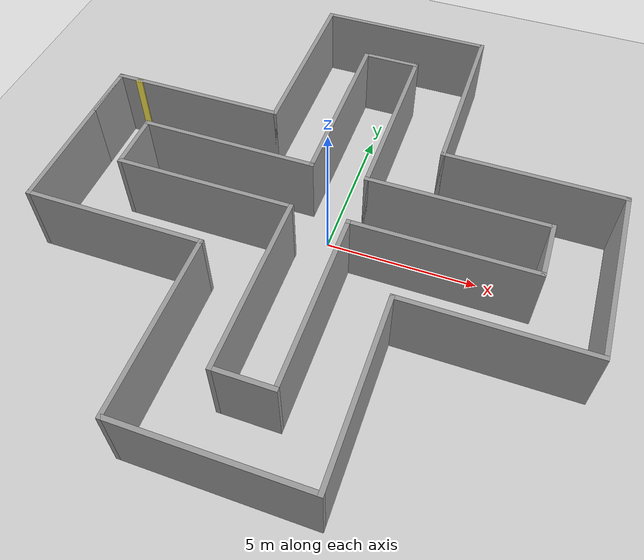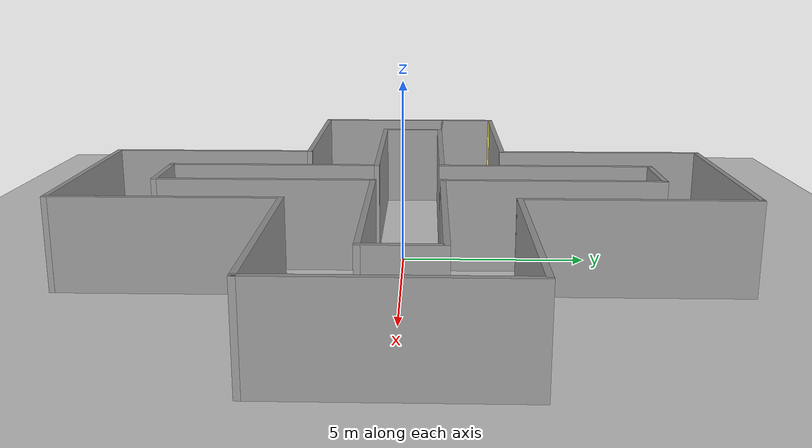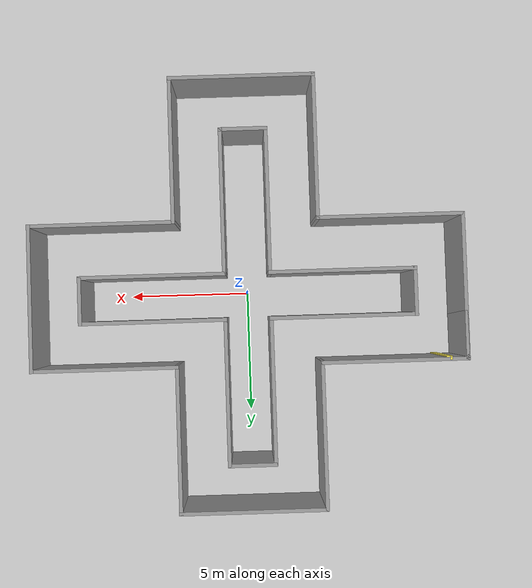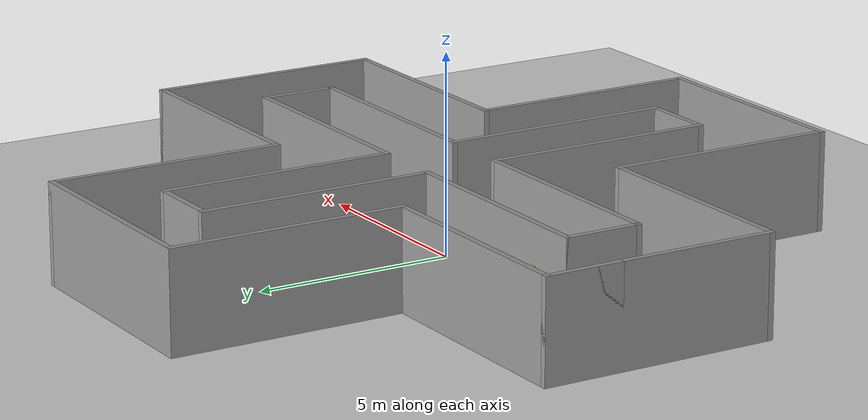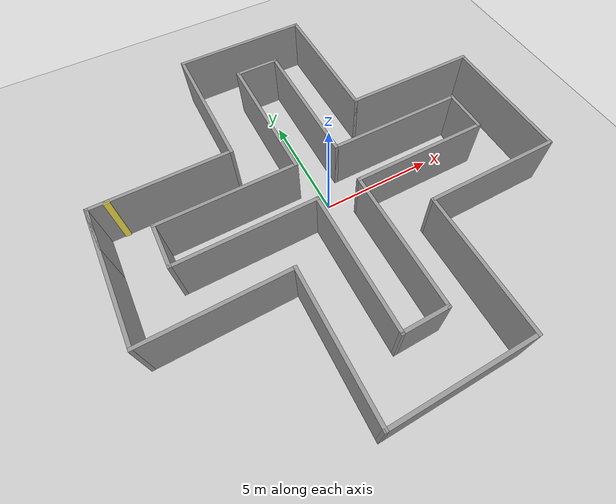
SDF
<sdf version="1.7">
 <world name="default">
  <light name="sun" type="directional">
   <pose>0 0 10 0 -0 0</pose>
   <diffuse>0.8 0.8 0.8 1</diffuse>
   <specular>0.2 0.2 0.2 1</specular>
   <attenuation>
    <range>1000</range>
    <constant>0.9</constant>
    <linear>0.01</linear>
    <quadratic>0.001</quadratic>
   </attenuation>
   <direction>-0.5 0.1 -0.9</direction>
   <spot><inner_angle>0</inner_angle><outer_angle>0</outer_angle><falloff>0</falloff></spot>
  </light>
  <model name="ground_plane">
   <static>1</static>
   <link name="link">
    <collision name="collision">
     <geometry><plane><normal>0 0 1</normal><size>100 100</size></plane></geometry>
     <surface><friction><ode><mu>100</mu><mu2>50</mu2></ode></friction></surface>
    </collision>
    <visual name="visual">
     <cast_shadows>0</cast_shadows>
     <geometry><plane><normal>0 0 1</normal><size>100 100</size></plane></geometry>
     <material>
      <script><uri>file://media/materials/scripts/gazebo.material</uri><name>Gazebo/Grey</name></script>
     </material>
    </visual>
   </link>
  </model>
  <gravity>0 0 -9.8</gravity>
  <magnetic_field>6e-06 2.3e-05 -4.2e-05</magnetic_field>
  <atmosphere type="adiabatic"/>
  <physics type="ode">
   <max_step_size>0.001</max_step_size>
   <real_time_factor>1</real_time_factor>
   <real_time_update_rate>1000</real_time_update_rate>
  </physics>
  <scene><ambient>0.4 0.4 0.4 1</ambient><background>0.7 0.7 0.7 1</background><shadows>1</shadows></scene>
  <spherical_coordinates>
   <surface_model>EARTH_WGS84</surface_model>
   <latitude_deg>0</latitude_deg>
   <longitude_deg>0</longitude_deg>
   <elevation>0</elevation>
   <heading_deg>0</heading_deg>
  </spherical_coordinates>
  <model name="labirent">
   <link name="Wall_14">
    <collision name="Wall_14_Collision">
     <geometry><box><size>6 0.15 2.5</size></box></geometry>
     <pose>0 0 1.25 0 -0 0</pose>
    </collision>
    <visual name="Wall_14_Visual">
     <pose>0 0 1.25 0 -0 0</pose>
     <geometry><box><size>6 0.15 2.5</size></box></geometry>
     <material>
      <script><uri>file://media/materials/scripts/gazebo.material</uri><name>Gazebo/Grey</name></script>
      <ambient>1 1 1 1</ambient>
     </material>
     <meta><layer>0</layer></meta>
    </visual>
    <pose>-5.85 2.925 0 0 -0 0</pose>
   </link>
   <link name="Wall_17">
    <collision name="Wall_17_Collision">
     <geometry><box><size>6 0.15 2.5</size></box></geometry>
     <pose>0 0 1.25 0 -0 0</pose>
    </collision>
    <visual name="Wall_17_Visual">
     <pose>0 0 1.25 0 -0 0</pose>
     <geometry><box><size>6 0.15 2.5</size></box></geometry>
     <material>
      <script><uri>file://media/materials/scripts/gazebo.material</uri><name>Gazebo/Grey</name></script>
      <ambient>1 1 1 1</ambient>
     </material>
     <meta><layer>0</layer></meta>
    </visual>
    <pose>-2.925 5.85 0 0 -0 1.5708</pose>
   </link>
   <link name="Wall_18">
    <collision name="Wall_18_Collision">
     <geometry><box><size>6 0.15 2.5</size></box></geometry>
     <pose>0 0 1.25 0 -0 0</pose>
    </collision>
    <visual name="Wall_18_Visual">
     <pose>0 0 1.25 0 -0 0</pose>
     <geometry><box><size>6 0.15 2.5</size></box></geometry>
     <material>
      <script><uri>file://media/materials/scripts/gazebo.material</uri><name>Gazebo/Grey</name></script>
      <ambient>1 1 1 1</ambient>
     </material>
     <meta><layer>0</layer></meta>
    </visual>
    <pose>0 8.775 0 0 -0 0</pose>
   </link>
   <link name="Wall_19">
    <collision name="Wall_19_Collision">
     <geometry><box><size>6 0.15 2.5</size></box></geometry>
     <pose>0 0 1.25 0 -0 0</pose>
    </collision>
    <visual name="Wall_19_Visual">
     <pose>0 0 1.25 0 -0 0</pose>
     <geometry><box><size>6 0.15 2.5</size></box></geometry>
     <material>
      <script><uri>file://media/materials/scripts/gazebo.material</uri><name>Gazebo/Grey</name></script>
      <ambient>1 1 1 1</ambient>
     </material>
     <meta><layer>0</layer></meta>
    </visual>
    <pose>2.925 5.85 0 0 -0 -1.5708</pose>
   </link>
   <link name="Wall_20">
    <collision name="Wall_20_Collision">
     <geometry><box><size>6 0.15 2.5</size></box></geometry>
     <pose>0 0 1.25 0 -0 0</pose>
    </collision>
    <visual name="Wall_20_Visual">
     <pose>0 0 1.25 0 -0 0</pose>
     <geometry><box><size>6 0.15 2.5</size></box></geometry>
     <material>
      <script><uri>file://media/materials/scripts/gazebo.material</uri><name>Gazebo/Grey</name></script>
      <ambient>1 1 1 1</ambient>
     </material>
     <meta><layer>0</layer></meta>
    </visual>
    <pose>5.85 2.925 0 0 -0 0</pose>
   </link>
   <link name="Wall_22">
    <collision name="Wall_22_Collision">
     <geometry><box><size>6 0.15 2.5</size></box></geometry>
     <pose>0 0 1.25 0 -0 0</pose>
    </collision>
    <visual name="Wall_22_Visual">
     <pose>0 0 1.25 0 -0 0</pose>
     <geometry><box><size>6 0.15 2.5</size></box></geometry>
     <material>
      <script><uri>file://media/materials/scripts/gazebo.material</uri><name>Gazebo/Grey</name></script>
      <ambient>1 1 1 1</ambient>
     </material>
     <meta><layer>0</layer></meta>
    </visual>
    <pose>8.775 -0 0 0 -0 -1.5708</pose>
   </link>
   <link name="Wall_23">
    <collision name="Wall_23_Collision">
     <geometry><box><size>6 0.15 2.5</size></box></geometry>
     <pose>0 0 1.25 0 -0 0</pose>
    </collision>
    <visual name="Wall_23_Visual">
     <pose>0 0 1.25 0 -0 0</pose>
     <geometry><box><size>6 0.15 2.5</size></box></geometry>
     <material>
      <script><uri>file://media/materials/scripts/gazebo.material</uri><name>Gazebo/Grey</name></script>
      <ambient>1 1 1 1</ambient>
     </material>
     <meta><layer>0</layer></meta>
    </visual>
    <pose>5.85 -2.925 0 0 -0 3.14159</pose>
   </link>
   <link name="Wall_25">
    <collision name="Wall_25_Collision">
     <geometry><box><size>6 0.15 2.5</size></box></geometry>
     <pose>0 0 1.25 0 -0 0</pose>
    </collision>
    <visual name="Wall_25_Visual">
     <pose>0 0 1.25 0 -0 0</pose>
     <geometry><box><size>6 0.15 2.5</size></box></geometry>
     <material>
      <script><uri>file://media/materials/scripts/gazebo.material</uri><name>Gazebo/Grey</name></script>
      <ambient>1 1 1 1</ambient>
     </material>
     <meta><layer>0</layer></meta>
    </visual>
    <pose>2.925 -5.85 0 0 -0 -1.5708</pose>
   </link>
   <link name="Wall_26">
    <collision name="Wall_26_Collision">
     <geometry><box><size>6 0.15 2.5</size></box></geometry>
     <pose>0 0 1.25 0 -0 0</pose>
    </collision>
    <visual name="Wall_26_Visual">
     <pose>0 0 1.25 0 -0 0</pose>
     <geometry><box><size>6 0.15 2.5</size></box></geometry>
     <material>
      <script><uri>file://media/materials/scripts/gazebo.material</uri><name>Gazebo/Grey</name></script>
      <ambient>1 1 1 1</ambient>
     </material>
     <meta><layer>0</layer></meta>
    </visual>
    <pose>0 -8.775 0 0 -0 3.14159</pose>
   </link>
   <link name="Wall_27">
    <collision name="Wall_27_Collision">
     <geometry><box><size>6 0.15 2.5</size></box></geometry>
     <pose>0 0 1.25 0 -0 0</pose>
    </collision>
    <visual name="Wall_27_Visual">
     <pose>0 0 1.25 0 -0 0</pose>
     <geometry><box><size>6 0.15 2.5</size></box></geometry>
     <material>
      <script><uri>file://media/materials/scripts/gazebo.material</uri><name>Gazebo/Grey</name></script>
      <ambient>1 1 1 1</ambient>
     </material>
     <meta><layer>0</layer></meta>
    </visual>
    <pose>-2.925 -5.85 0 0 -0 1.5708</pose>
   </link>
   <link name="Wall_28">
    <collision name="Wall_28_Collision">
     <geometry><box><size>6 0.15 2.5</size></box></geometry>
     <pose>0 0 1.25 0 -0 0</pose>
    </collision>
    <visual name="Wall_28_Visual">
     <pose>0 0 1.25 0 -0 0</pose>
     <geometry><box><size>6 0.15 2.5</size></box></geometry>
     <material>
      <script><uri>file://media/materials/scripts/gazebo.material</uri><name>Gazebo/Grey</name></script>
      <ambient>1 1 1 1</ambient>
     </material>
     <meta><layer>0</layer></meta>
    </visual>
    <pose>-5.85 -2.925 0 0 -0 3.14159</pose>
   </link>
   <link name="Wall_30">
    <collision name="Wall_30_Collision">
     <geometry><box><size>6 0.15 2.5</size></box></geometry>
     <pose>0 0 1.25 0 -0 0</pose>
    </collision>
    <visual name="Wall_30_Visual">
     <pose>0 0 1.25 0 -0 0</pose>
     <geometry><box><size>6 0.15 2.5</size></box></geometry>
     <material>
      <script><uri>file://media/materials/scripts/gazebo.material</uri><name>Gazebo/Grey</name></script>
      <ambient>1 1 1 1</ambient>
     </material>
     <meta><layer>0</layer></meta>
    </visual>
    <pose>-8.775 -0 0 0 -0 1.5708</pose>
   </link>
   <link name="Wall_33">
    <collision name="Wall_33_Collision">
     <geometry><box><size>2 0.15 2.5</size></box></geometry>
     <pose>0 0 1.25 0 -0 0</pose>
    </collision>
    <visual name="Wall_33_Visual">
     <pose>0 0 1.25 0 -0 0</pose>
     <geometry><box><size>2 0.15 2.5</size></box></geometry>
     <material>
      <script><uri>file://media/materials/scripts/gazebo.material</uri><name>Gazebo/Grey</name></script>
      <ambient>1 1 1 1</ambient>
     </material>
     <meta><layer>0</layer></meta>
    </visual>
    <pose>-8.775 2 0 0 -0 -1.5708</pose>
   </link>
   <link name="Wall_36">
    <collision name="Wall_36_Collision">
     <geometry><box><size>6 0.15 2.5</size></box></geometry>
     <pose>0 0 1.25 0 -0 0</pose>
    </collision>
    <visual name="Wall_36_Visual">
     <pose>0 0 1.25 0 -0 0</pose>
     <geometry><box><size>6 0.15 2.5</size></box></geometry>
     <material>
      <script><uri>file://media/materials/scripts/gazebo.material</uri><name>Gazebo/Grey</name></script>
      <ambient>1 1 1 1</ambient>
     </material>
     <meta><layer>0</layer></meta>
    </visual>
    <pose>-3.85 1.075 0 0 -0 3.14159</pose>
   </link>
   <link name="Wall_40">
    <collision name="Wall_40_Collision">
     <geometry><box><size>6 0.15 2.5</size></box></geometry>
     <pose>0 0 1.25 0 -0 0</pose>
    </collision>
    <visual name="Wall_40_Visual">
     <pose>0 0 1.25 0 -0 0</pose>
     <geometry><box><size>6 0.15 2.5</size></box></geometry>
     <material>
      <script><uri>file://media/materials/scripts/gazebo.material</uri><name>Gazebo/Grey</name></script>
      <ambient>1 1 1 1</ambient>
     </material>
     <meta><layer>0</layer></meta>
    </visual>
    <pose>-0.925 4 0 0 -0 1.5708</pose>
   </link>
   <link name="Wall_41">
    <collision name="Wall_41_Collision">
     <geometry><box><size>2 0.15 2.5</size></box></geometry>
     <pose>0 0 1.25 0 -0 0</pose>
    </collision>
    <visual name="Wall_41_Visual">
     <pose>0 0 1.25 0 -0 0</pose>
     <geometry><box><size>2 0.15 2.5</size></box></geometry>
     <material>
      <script><uri>file://media/materials/scripts/gazebo.material</uri><name>Gazebo/Grey</name></script>
      <ambient>1 1 1 1</ambient>
     </material>
     <meta><layer>0</layer></meta>
    </visual>
    <pose>0 6.925 0 0 -0 0</pose>
   </link>
   <link name="Wall_42">
    <collision name="Wall_42_Collision">
     <geometry><box><size>6 0.15 2.5</size></box></geometry>
     <pose>0 0 1.25 0 -0 0</pose>
    </collision>
    <visual name="Wall_42_Visual">
     <pose>0 0 1.25 0 -0 0</pose>
     <geometry><box><size>6 0.15 2.5</size></box></geometry>
     <material>
      <script><uri>file://media/materials/scripts/gazebo.material</uri><name>Gazebo/Grey</name></script>
      <ambient>1 1 1 1</ambient>
     </material>
     <meta><layer>0</layer></meta>
    </visual>
    <pose>0.925 4 0 0 -0 -1.5708</pose>
   </link>
   <link name="Wall_43">
    <collision name="Wall_43_Collision">
     <geometry><box><size>6 0.15 2.5</size></box></geometry>
     <pose>0 0 1.25 0 -0 0</pose>
    </collision>
    <visual name="Wall_43_Visual">
     <pose>0 0 1.25 0 -0 0</pose>
     <geometry><box><size>6 0.15 2.5</size></box></geometry>
     <material>
      <script><uri>file://media/materials/scripts/gazebo.material</uri><name>Gazebo/Grey</name></script>
      <ambient>1 1 1 1</ambient>
     </material>
     <meta><layer>0</layer></meta>
    </visual>
    <pose>3.85 1.075 0 0 -0 0</pose>
   </link>
   <link name="Wall_44">
    <collision name="Wall_44_Collision">
     <geometry><box><size>2 0.15 2.5</size></box></geometry>
     <pose>0 0 1.25 0 -0 0</pose>
    </collision>
    <visual name="Wall_44_Visual">
     <pose>0 0 1.25 0 -0 0</pose>
     <geometry><box><size>2 0.15 2.5</size></box></geometry>
     <material>
      <script><uri>file://media/materials/scripts/gazebo.material</uri><name>Gazebo/Grey</name></script>
      <ambient>1 1 1 1</ambient>
     </material>
     <meta><layer>0</layer></meta>
    </visual>
    <pose>6.775 0.15 0 0 -0 -1.5708</pose>
   </link>
   <link name="Wall_45">
    <collision name="Wall_45_Collision">
     <geometry><box><size>6 0.15 2.5</size></box></geometry>
     <pose>0 0 1.25 0 -0 0</pose>
    </collision>
    <visual name="Wall_45_Visual">
     <pose>0 0 1.25 0 -0 0</pose>
     <geometry><box><size>6 0.15 2.5</size></box></geometry>
     <material>
      <script><uri>file://media/materials/scripts/gazebo.material</uri><name>Gazebo/Grey</name></script>
      <ambient>1 1 1 1</ambient>
     </material>
     <meta><layer>0</layer></meta>
    </visual>
    <pose>3.85 -0.775 0 0 -0 3.14159</pose>
   </link>
   <link name="Wall_47">
    <collision name="Wall_47_Collision">
     <geometry><box><size>6 0.15 2.5</size></box></geometry>
     <pose>0 0 1.25 0 -0 0</pose>
    </collision>
    <visual name="Wall_47_Visual">
     <pose>0 0 1.25 0 -0 0</pose>
     <geometry><box><size>6 0.15 2.5</size></box></geometry>
     <material>
      <script><uri>file://media/materials/scripts/gazebo.material</uri><name>Gazebo/Grey</name></script>
      <ambient>1 1 1 1</ambient>
     </material>
     <meta><layer>0</layer></meta>
    </visual>
    <pose>0.925 -3.7 0 0 -0 -1.5708</pose>
   </link>
   <link name="Wall_49">
    <collision name="Wall_49_Collision">
     <geometry><box><size>2 0.15 2.5</size></box></geometry>
     <pose>0 0 1.25 0 -0 0</pose>
    </collision>
    <visual name="Wall_49_Visual">
     <pose>0 0 1.25 0 -0 0</pose>
     <geometry><box><size>2 0.15 2.5</size></box></geometry>
     <material>
      <script><uri>file://media/materials/scripts/gazebo.material</uri><name>Gazebo/Grey</name></script>
      <ambient>1 1 1 1</ambient>
     </material>
     <meta><layer>0</layer></meta>
    </visual>
    <pose>0 -6.625 0 0 -0 3.14159</pose>
   </link>
   <link name="Wall_50">
    <collision name="Wall_50_Collision">
     <geometry><box><size>6 0.15 2.5</size></box></geometry>
     <pose>0 0 1.25 0 -0 0</pose>
    </collision>
    <visual name="Wall_50_Visual">
     <pose>0 0 1.25 0 -0 0</pose>
     <geometry><box><size>6 0.15 2.5</size></box></geometry>
     <material>
      <script><uri>file://media/materials/scripts/gazebo.material</uri><name>Gazebo/Grey</name></script>
      <ambient>1 1 1 1</ambient>
     </material>
     <meta><layer>0</layer></meta>
    </visual>
    <pose>-0.925 -3.7 0 0 -0 1.5708</pose>
   </link>
   <link name="Wall_51">
    <collision name="Wall_51_Collision">
     <geometry><box><size>6 0.15 2.5</size></box></geometry>
     <pose>0 0 1.25 0 -0 0</pose>
    </collision>
    <visual name="Wall_51_Visual">
     <pose>0 0 1.25 0 -0 0</pose>
     <geometry><box><size>6 0.15 2.5</size></box></geometry>
     <material>
      <script><uri>file://media/materials/scripts/gazebo.material</uri><name>Gazebo/Grey</name></script>
      <ambient>1 1 1 1</ambient>
     </material>
     <meta><layer>0</layer></meta>
    </visual>
    <pose>-3.85 -0.775 0 0 -0 3.14159</pose>
   </link>
   <link name="Wall_52">
    <collision name="Wall_52_Collision">
     <geometry><box><size>2 0.15 2.5</size></box></geometry>
     <pose>0 0 1.25 0 -0 0</pose>
    </collision>
    <visual name="Wall_52_Visual">
     <pose>0 0 1.25 0 -0 0</pose>
     <geometry><box><size>2 0.15 2.5</size></box></geometry>
     <material>
      <script><uri>file://media/materials/scripts/gazebo.material</uri><name>Gazebo/Grey</name></script>
      <ambient>1 1 1 1</ambient>
     </material>
     <meta><layer>0</layer></meta>
    </visual>
    <pose>-6.775 0.15 0 0 -0 1.5708</pose>
   </link>
   <static>1</static>
  </model>
  <model name="sari_direk">
   <pose>-5.58499 2.76553 0 0 -0 0</pose>
   <link name="Wall_1">
    <collision name="Wall_1_Collision">
     <geometry><box><size>0.25 0.15 2.5</size></box></geometry>
     <pose>0 0 1.25 0 -0 0</pose>
    </collision>
    <visual name="Wall_1_Visual">
     <pose>0 0 1.25 0 -0 0</pose>
     <geometry><box><size>0.25 0.15 2.5</size></box></geometry>
     <material>
      <script><uri>file://media/materials/scripts/gazebo.material</uri><name>Gazebo/Grey</name></script>
      <ambient>0.988235 0.913725 0.309804 1</ambient>
     </material>
     <meta><layer>0</layer></meta>
    </visual>
    <pose>-2.43021 0.11583 0 0 -0 0</pose>
   </link>
   <static>1</static>
  </model>
 </world>
</sdf>
